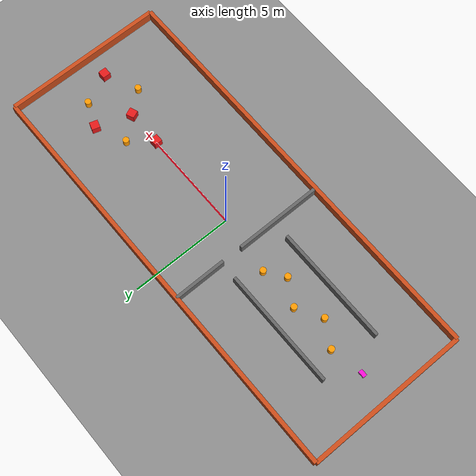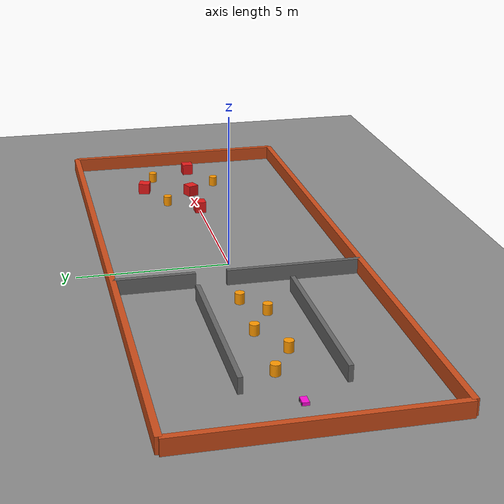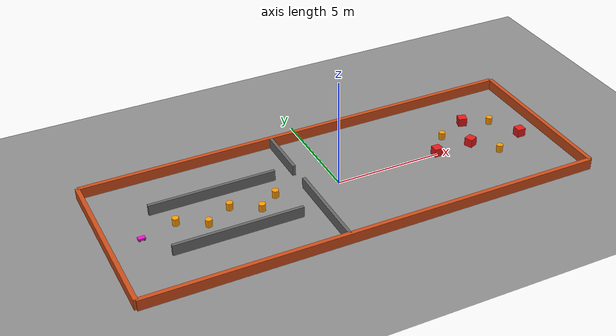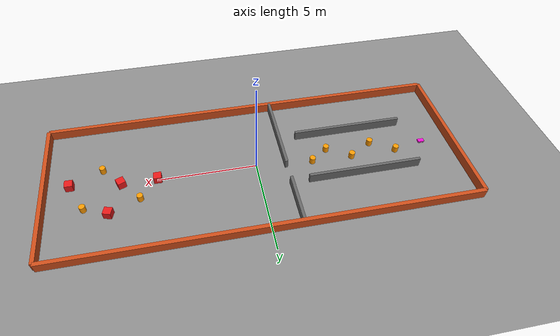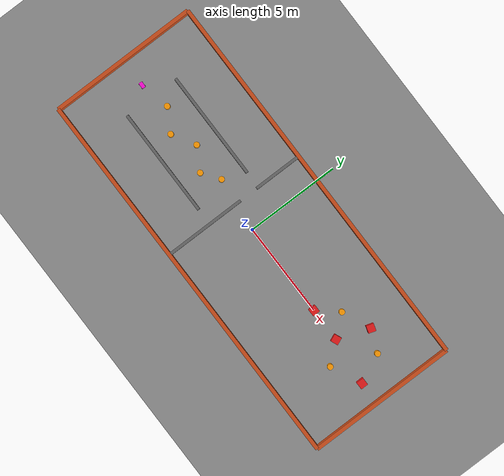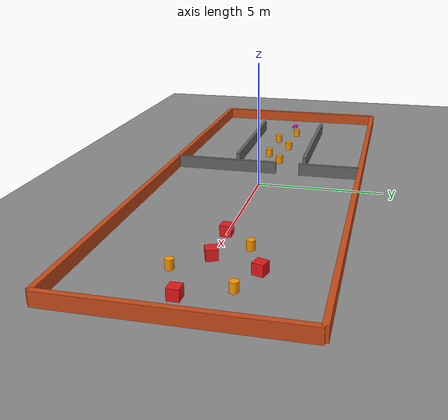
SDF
<sdf version="1.9">
 <world name="limo_obstacle_gauntlet">
  <physics name="1ms" type="ode">
   <max_step_size>0.001</max_step_size>
   <real_time_factor>1.0</real_time_factor>
  </physics>
  <plugin filename="gz-sim-physics-system" name="gz::sim::systems::Physics"/>
  <plugin filename="gz-sim-user-commands-system" name="gz::sim::systems::UserCommands"/>
  <plugin filename="gz-sim-scene-broadcaster-system" name="gz::sim::systems::SceneBroadcaster"/>
  <plugin filename="gz-sim-sensors-system" name="gz::sim::systems::Sensors">
   <render_engine>ogre2</render_engine>
  </plugin>
  <plugin filename="gz-sim-imu-system" name="gz::sim::systems::Imu"/>
  <plugin filename="gz-sim-contact-system" name="gz::sim::systems::Contact"/>
  <light type="directional" name="sun">
   <pose>0 0 10 0 0 0</pose>
   <diffuse>0.9 0.9 0.9 1</diffuse>
   <specular>0.3 0.3 0.3 1</specular>
   <direction>-0.5 0.1 -0.9</direction>
  </light>
  <model name="ground_plane">
   <static>true</static>
   <link name="link">
    <collision name="collision">
     <geometry><plane><normal>0 0 1</normal><size>100 100</size></plane></geometry>
     <surface><friction><ode><mu>0.8</mu><mu2>0.8</mu2></ode></friction></surface>
    </collision>
    <visual name="visual">
     <geometry><plane><normal>0 0 1</normal><size>100 100</size></plane></geometry>
     <material><ambient>0.45 0.45 0.45 1</ambient><diffuse>0.55 0.55 0.55 1</diffuse></material>
    </visual>
   </link>
  </model>
  <model name="wall_north">
   <static>true</static>
   <pose>0 4.0 0.25 0 0 0.0</pose>
   <link name="link">
    <collision name="collision"><geometry><box><size>21.0 0.2 0.5</size></box></geometry></collision>
    <visual name="visual">
     <geometry><box><size>21.0 0.2 0.5</size></box></geometry>
     <material><ambient>0.8 0.3 0.1 1</ambient><diffuse>0.8 0.3 0.1 1</diffuse></material>
    </visual>
   </link>
  </model>
  <model name="wall_south">
   <static>true</static>
   <pose>0 -4.0 0.25 0 0 0.0</pose>
   <link name="link">
    <collision name="collision"><geometry><box><size>21.0 0.2 0.5</size></box></geometry></collision>
    <visual name="visual">
     <geometry><box><size>21.0 0.2 0.5</size></box></geometry>
     <material><ambient>0.8 0.3 0.1 1</ambient><diffuse>0.8 0.3 0.1 1</diffuse></material>
    </visual>
   </link>
  </model>
  <model name="wall_east">
   <static>true</static>
   <pose>10.5 0 0.25 0 0 0.0</pose>
   <link name="link">
    <collision name="collision"><geometry><box><size>0.2 8.0 0.5</size></box></geometry></collision>
    <visual name="visual">
     <geometry><box><size>0.2 8.0 0.5</size></box></geometry>
     <material><ambient>0.8 0.3 0.1 1</ambient><diffuse>0.8 0.3 0.1 1</diffuse></material>
    </visual>
   </link>
  </model>
  <model name="wall_west">
   <static>true</static>
   <pose>-10.5 0 0.25 0 0 0.0</pose>
   <link name="link">
    <collision name="collision"><geometry><box><size>0.2 8.0 0.5</size></box></geometry></collision>
    <visual name="visual">
     <geometry><box><size>0.2 8.0 0.5</size></box></geometry>
     <material><ambient>0.8 0.3 0.1 1</ambient><diffuse>0.8 0.3 0.1 1</diffuse></material>
    </visual>
   </link>
  </model>
  <model name="corridor_north">
   <static>true</static>
   <pose>-5.3 1.5 0.25 0 0 0.0</pose>
   <link name="link">
    <collision name="collision"><geometry><box><size>5.8 0.15 0.5</size></box></geometry></collision>
    <visual name="visual">
     <geometry><box><size>5.8 0.15 0.5</size></box></geometry>
     <material><ambient>0.4 0.4 0.4 1</ambient><diffuse>0.4 0.4 0.4 1</diffuse></material>
    </visual>
   </link>
  </model>
  <model name="corridor_south">
   <static>true</static>
   <pose>-5.3 -1.5 0.25 0 0 0.0</pose>
   <link name="link">
    <collision name="collision"><geometry><box><size>5.8 0.15 0.5</size></box></geometry></collision>
    <visual name="visual">
     <geometry><box><size>5.8 0.15 0.5</size></box></geometry>
     <material><ambient>0.4 0.4 0.4 1</ambient><diffuse>0.4 0.4 0.4 1</diffuse></material>
    </visual>
   </link>
  </model>
  <model name="slalom_cone_0">
   <static>true</static>
   <pose>-7.4 0.35 0.175 0 0 0</pose>
   <link name="link">
    <collision name="collision">
     <geometry><cylinder><radius>0.15</radius><length>0.35</length></cylinder></geometry>
    </collision>
    <visual name="visual">
     <geometry><cylinder><radius>0.15</radius><length>0.35</length></cylinder></geometry>
     <material><ambient>1.0 0.5 0.0 1</ambient><diffuse>1.0 0.6 0.0 1</diffuse></material>
    </visual>
   </link>
  </model>
  <model name="slalom_cone_1">
   <static>true</static>
   <pose>-6.2 -0.35 0.175 0 0 0</pose>
   <link name="link">
    <collision name="collision">
     <geometry><cylinder><radius>0.15</radius><length>0.35</length></cylinder></geometry>
    </collision>
    <visual name="visual">
     <geometry><cylinder><radius>0.15</radius><length>0.35</length></cylinder></geometry>
     <material><ambient>1.0 0.5 0.0 1</ambient><diffuse>1.0 0.6 0.0 1</diffuse></material>
    </visual>
   </link>
  </model>
  <model name="slalom_cone_2">
   <static>true</static>
   <pose>-5.0 0.35 0.175 0 0 0</pose>
   <link name="link">
    <collision name="collision">
     <geometry><cylinder><radius>0.15</radius><length>0.35</length></cylinder></geometry>
    </collision>
    <visual name="visual">
     <geometry><cylinder><radius>0.15</radius><length>0.35</length></cylinder></geometry>
     <material><ambient>1.0 0.5 0.0 1</ambient><diffuse>1.0 0.6 0.0 1</diffuse></material>
    </visual>
   </link>
  </model>
  <model name="slalom_cone_3">
   <static>true</static>
   <pose>-3.8 -0.35 0.175 0 0 0</pose>
   <link name="link">
    <collision name="collision">
     <geometry><cylinder><radius>0.15</radius><length>0.35</length></cylinder></geometry>
    </collision>
    <visual name="visual">
     <geometry><cylinder><radius>0.15</radius><length>0.35</length></cylinder></geometry>
     <material><ambient>1.0 0.5 0.0 1</ambient><diffuse>1.0 0.6 0.0 1</diffuse></material>
    </visual>
   </link>
  </model>
  <model name="slalom_cone_4">
   <static>true</static>
   <pose>-2.9 0.3 0.175 0 0 0</pose>
   <link name="link">
    <collision name="collision">
     <geometry><cylinder><radius>0.15</radius><length>0.35</length></cylinder></geometry>
    </collision>
    <visual name="visual">
     <geometry><cylinder><radius>0.15</radius><length>0.35</length></cylinder></geometry>
     <material><ambient>1.0 0.5 0.0 1</ambient><diffuse>1.0 0.6 0.0 1</diffuse></material>
    </visual>
   </link>
  </model>
  <model name="gate_north">
   <static>true</static>
   <pose>-1.5 2.7 0.25 0 0 0.0</pose>
   <link name="link">
    <collision name="collision"><geometry><box><size>0.15 2.6 0.5</size></box></geometry></collision>
    <visual name="visual">
     <geometry><box><size>0.15 2.6 0.5</size></box></geometry>
     <material><ambient>0.4 0.4 0.4 1</ambient><diffuse>0.4 0.4 0.4 1</diffuse></material>
    </visual>
   </link>
  </model>
  <model name="gate_south">
   <static>true</static>
   <pose>-1.5 -1.8 0.25 0 0 0.0</pose>
   <link name="link">
    <collision name="collision"><geometry><box><size>0.15 4.4 0.5</size></box></geometry></collision>
    <visual name="visual">
     <geometry><box><size>0.15 4.4 0.5</size></box></geometry>
     <material><ambient>0.4 0.4 0.4 1</ambient><diffuse>0.4 0.4 0.4 1</diffuse></material>
    </visual>
   </link>
  </model>
  <model name="clutter_box_a">
   <static>true</static>
   <pose>5.0 0.0 0.2 0 0 0.0</pose>
   <link name="link">
    <collision name="collision"><geometry><box><size>0.4 0.4 0.4</size></box></geometry></collision>
    <visual name="visual">
     <geometry><box><size>0.4 0.4 0.4</size></box></geometry>
     <material><ambient>0.9 0.1 0.1 1</ambient><diffuse>0.9 0.1 0.1 1</diffuse></material>
    </visual>
   </link>
  </model>
  <model name="clutter_cone_b">
   <static>true</static>
   <pose>5.9 1.05 0.175 0 0 0</pose>
   <link name="link">
    <collision name="collision">
     <geometry><cylinder><radius>0.15</radius><length>0.35</length></cylinder></geometry>
    </collision>
    <visual name="visual">
     <geometry><cylinder><radius>0.15</radius><length>0.35</length></cylinder></geometry>
     <material><ambient>1.0 0.5 0.0 1</ambient><diffuse>1.0 0.6 0.0 1</diffuse></material>
    </visual>
   </link>
  </model>
  <model name="clutter_box_c">
   <static>true</static>
   <pose>6.8 0.0 0.2 0 0 0.4</pose>
   <link name="link">
    <collision name="collision"><geometry><box><size>0.4 0.4 0.4</size></box></geometry></collision>
    <visual name="visual">
     <geometry><box><size>0.4 0.4 0.4</size></box></geometry>
     <material><ambient>0.9 0.1 0.1 1</ambient><diffuse>0.9 0.1 0.1 1</diffuse></material>
    </visual>
   </link>
  </model>
  <model name="clutter_cone_d">
   <static>true</static>
   <pose>7.7 -1.05 0.175 0 0 0</pose>
   <link name="link">
    <collision name="collision">
     <geometry><cylinder><radius>0.15</radius><length>0.35</length></cylinder></geometry>
    </collision>
    <visual name="visual">
     <geometry><cylinder><radius>0.15</radius><length>0.35</length></cylinder></geometry>
     <material><ambient>1.0 0.5 0.0 1</ambient><diffuse>1.0 0.6 0.0 1</diffuse></material>
    </visual>
   </link>
  </model>
  <model name="clutter_box_e">
   <static>true</static>
   <pose>7.4 1.7 0.2 0 0 -0.3</pose>
   <link name="link">
    <collision name="collision"><geometry><box><size>0.4 0.4 0.4</size></box></geometry></collision>
    <visual name="visual">
     <geometry><box><size>0.4 0.4 0.4</size></box></geometry>
     <material><ambient>0.9 0.1 0.1 1</ambient><diffuse>0.9 0.1 0.1 1</diffuse></material>
    </visual>
   </link>
  </model>
  <model name="clutter_cone_f">
   <static>true</static>
   <pose>8.6 1.2 0.175 0 0 0</pose>
   <link name="link">
    <collision name="collision">
     <geometry><cylinder><radius>0.15</radius><length>0.35</length></cylinder></geometry>
    </collision>
    <visual name="visual">
     <geometry><cylinder><radius>0.15</radius><length>0.35</length></cylinder></geometry>
     <material><ambient>1.0 0.5 0.0 1</ambient><diffuse>1.0 0.6 0.0 1</diffuse></material>
    </visual>
   </link>
  </model>
  <model name="clutter_box_g">
   <static>true</static>
   <pose>9.3 -0.3 0.2 0 0 0.0</pose>
   <link name="link">
    <collision name="collision"><geometry><box><size>0.4 0.4 0.4</size></box></geometry></collision>
    <visual name="visual">
     <geometry><box><size>0.4 0.4 0.4</size></box></geometry>
     <material><ambient>0.9 0.1 0.1 1</ambient><diffuse>0.9 0.1 0.1 1</diffuse></material>
    </visual>
   </link>
  </model>
  <include>
   <uri>model://limo_pro</uri>
   <name>limo</name>
   <pose>-9 0 0.075 0 0 0</pose>
   <plugin filename="gz-sim-pose-publisher-system" name="gz::sim::systems::PosePublisher">
    <publish_model_pose>true</publish_model_pose>
    <publish_link_pose>false</publish_link_pose>
    <publish_collision_pose>false</publish_collision_pose>
    <publish_visual_pose>false</publish_visual_pose>
    <publish_sensor_pose>false</publish_sensor_pose>
    <use_pose_vector_msg>false</use_pose_vector_msg>
    <update_frequency>20</update_frequency>
   </plugin>
  </include>
 </world>
</sdf>

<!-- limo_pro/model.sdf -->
<sdf version="1.9">
  <model name="limo_pro">
    <static>false</static>

    <!-- ============ CHASSIS ============ -->
    <link name="base_link">
      <inertial>
        <mass>4.5</mass>
        <inertia>
          <ixx>0.045</ixx><iyy>0.08</iyy><izz>0.09</izz>
          <ixy>0</ixy><ixz>0</ixz><iyz>0</iyz>
        </inertia>
      </inertial>
      <visual name="chassis_visual">
        <geometry>
          <box><size>0.32 0.20 0.10</size></box>
        </geometry>
        <material>
          <ambient>1.0 0.0 0.85 1</ambient>
          <diffuse>1.0 0.05 0.85 1</diffuse>
          <emissive>0.35 0.0 0.3 1</emissive>
        </material>
      </visual>
      <collision name="chassis_collision">
        <geometry>
          <box><size>0.32 0.20 0.10</size></box>
        </geometry>
      </collision>

      <!-- ============ CAMERA SENSOR ============ -->
      <sensor name="camera" type="camera">
        <pose>0.16 0 0.12 0 0 0</pose>
        <always_on>true</always_on>
        <update_rate>30</update_rate>
        <topic>limo/camera</topic>
        <camera>
          <horizontal_fov>1.2</horizontal_fov>
          <image>
            <width>640</width>
            <height>480</height>
            <format>R8G8B8</format>
          </image>
          <clip><near>0.05</near><far>50</far></clip>
        </camera>
      </sensor>

      <!-- ============ LIDAR SENSOR ============ -->
      <sensor name="lidar" type="gpu_lidar">
        <pose>0.0 0 0.15 0 0 0</pose>
        <always_on>true</always_on>
        <update_rate>10</update_rate>
        <topic>limo/lidar</topic>
        <lidar>
          <scan>
            <horizontal>
              <samples>360</samples>
              <resolution>1</resolution>
              <min_angle>0</min_angle>
              <max_angle>6.28318</max_angle>
            </horizontal>
          </scan>
          <range>
            <min>0.1</min>
            <max>12.0</max>
            <resolution>0.01</resolution>
          </range>
        </lidar>
      </sensor>

      <!-- ============ IMU SENSOR ============ -->
      <sensor name="imu" type="imu">
        <pose>0 0 0.05 0 0 0</pose>
        <always_on>true</always_on>
        <update_rate>100</update_rate>
        <topic>limo/imu</topic>
        <imu>
          <angular_velocity>
            <x><noise type="gaussian"><mean>0</mean><stddev>0.001</stddev></noise></x>
            <y><noise type="gaussian"><mean>0</mean><stddev>0.001</stddev></noise></y>
            <z><noise type="gaussian"><mean>0</mean><stddev>0.001</stddev></noise></z>
          </angular_velocity>
          <linear_acceleration>
            <x><noise type="gaussian"><mean>0</mean><stddev>0.02</stddev></noise></x>
            <y><noise type="gaussian"><mean>0</mean><stddev>0.02</stddev></noise></y>
            <z><noise type="gaussian"><mean>0</mean><stddev>0.02</stddev></noise></z>
          </linear_acceleration>
        </imu>
      </sensor>
    </link>

    <!-- ============ REAR LEFT WHEEL ============ -->
    <link name="rear_left_wheel">
      <pose>-0.1 0.096 -0.03 -1.5707 0 0</pose>
      <inertial>
        <mass>0.3</mass>
        <inertia>
          <ixx>0.0002</ixx><iyy>0.0002</iyy><izz>0.0003</izz>
          <ixy>0</ixy><ixz>0</ixz><iyz>0</iyz>
        </inertia>
      </inertial>
      <visual name="visual">
        <geometry><cylinder><radius>0.045</radius><length>0.03</length></cylinder></geometry>
        <material><ambient>0.1 0.1 0.1 1</ambient><diffuse>0.15 0.15 0.15 1</diffuse></material>
      </visual>
      <collision name="collision">
        <geometry><cylinder><radius>0.045</radius><length>0.03</length></cylinder></geometry>
        <surface>
          <friction><ode><mu>1.0</mu><mu2>1.0</mu2></ode></friction>
        </surface>
      </collision>
    </link>
    <joint name="rear_left_wheel_joint" type="revolute">
      <parent>base_link</parent><child>rear_left_wheel</child>
      <axis><xyz>0 0 1</xyz></axis>
    </joint>

    <!-- ============ REAR RIGHT WHEEL ============ -->
    <link name="rear_right_wheel">
      <pose>-0.1 -0.096 -0.03 -1.5707 0 0</pose>
      <inertial>
        <mass>0.3</mass>
        <inertia>
          <ixx>0.0002</ixx><iyy>0.0002</iyy><izz>0.0003</izz>
          <ixy>0</ixy><ixz>0</ixz><iyz>0</iyz>
        </inertia>
      </inertial>
      <visual name="visual">
        <geometry><cylinder><radius>0.045</radius><length>0.03</length></cylinder></geometry>
        <material><ambient>0.1 0.1 0.1 1</ambient><diffuse>0.15 0.15 0.15 1</diffuse></material>
      </visual>
      <collision name="collision">
        <geometry><cylinder><radius>0.045</radius><length>0.03</length></cylinder></geometry>
        <surface>
          <friction><ode><mu>1.0</mu><mu2>1.0</mu2></ode></friction>
        </surface>
      </collision>
    </link>
    <joint name="rear_right_wheel_joint" type="revolute">
      <parent>base_link</parent><child>rear_right_wheel</child>
      <axis><xyz>0 0 1</xyz></axis>
    </joint>

    <!-- ============ FRONT LEFT STEERING + WHEEL ============ -->
    <link name="front_left_steering">
      <pose>0.1 0.096 -0.03 0 0 0</pose>
      <inertial><mass>0.05</mass>
        <inertia><ixx>0.00001</ixx><iyy>0.00001</iyy><izz>0.00001</izz>
          <ixy>0</ixy><ixz>0</ixz><iyz>0</iyz></inertia>
      </inertial>
    </link>
    <joint name="front_left_steering_joint" type="revolute">
      <parent>base_link</parent><child>front_left_steering</child>
      <axis><xyz>0 0 1</xyz>
        <limit><lower>-0.48</lower><upper>0.48</upper><effort>1e6</effort></limit>
      </axis>
    </joint>

    <link name="front_left_wheel">
      <pose>0.1 0.096 -0.03 -1.5707 0 0</pose>
      <inertial>
        <mass>0.3</mass>
        <inertia>
          <ixx>0.0002</ixx><iyy>0.0002</iyy><izz>0.0003</izz>
          <ixy>0</ixy><ixz>0</ixz><iyz>0</iyz>
        </inertia>
      </inertial>
      <visual name="visual">
        <geometry><cylinder><radius>0.045</radius><length>0.03</length></cylinder></geometry>
        <material><ambient>0.1 0.1 0.1 1</ambient><diffuse>0.15 0.15 0.15 1</diffuse></material>
      </visual>
      <collision name="collision">
        <geometry><cylinder><radius>0.045</radius><length>0.03</length></cylinder></geometry>
        <surface>
          <friction><ode><mu>1.0</mu><mu2>1.0</mu2></ode></friction>
        </surface>
      </collision>
    </link>
    <joint name="front_left_wheel_joint" type="revolute">
      <parent>front_left_steering</parent><child>front_left_wheel</child>
      <axis><xyz>0 0 1</xyz></axis>
    </joint>

    <!-- ============ FRONT RIGHT STEERING + WHEEL ============ -->
    <link name="front_right_steering">
      <pose>0.1 -0.096 -0.03 0 0 0</pose>
      <inertial><mass>0.05</mass>
        <inertia><ixx>0.00001</ixx><iyy>0.00001</iyy><izz>0.00001</izz>
          <ixy>0</ixy><ixz>0</ixz><iyz>0</iyz></inertia>
      </inertial>
    </link>
    <joint name="front_right_steering_joint" type="revolute">
      <parent>base_link</parent><child>front_right_steering</child>
      <axis><xyz>0 0 1</xyz>
        <limit><lower>-0.48</lower><upper>0.48</upper><effort>1e6</effort></limit>
      </axis>
    </joint>

    <link name="front_right_wheel">
      <pose>0.1 -0.096 -0.03 -1.5707 0 0</pose>
      <inertial>
        <mass>0.3</mass>
        <inertia>
          <ixx>0.0002</ixx><iyy>0.0002</iyy><izz>0.0003</izz>
          <ixy>0</ixy><ixz>0</ixz><iyz>0</iyz>
        </inertia>
      </inertial>
      <visual name="visual">
        <geometry><cylinder><radius>0.045</radius><length>0.03</length></cylinder></geometry>
        <material><ambient>0.1 0.1 0.1 1</ambient><diffuse>0.15 0.15 0.15 1</diffuse></material>
      </visual>
      <collision name="collision">
        <geometry><cylinder><radius>0.045</radius><length>0.03</length></cylinder></geometry>
        <surface>
          <friction><ode><mu>1.0</mu><mu2>1.0</mu2></ode></friction>
        </surface>
      </collision>
    </link>
    <joint name="front_right_wheel_joint" type="revolute">
      <parent>front_right_steering</parent><child>front_right_wheel</child>
      <axis><xyz>0 0 1</xyz></axis>
    </joint>

    <!-- ============ ACKERMANN STEERING PLUGIN ============ -->
    <plugin filename="gz-sim-ackermann-steering-system"
            name="gz::sim::systems::AckermannSteering">
      <left_joint>front_left_wheel_joint</left_joint>
      <right_joint>front_right_wheel_joint</right_joint>
      <left_steering_joint>front_left_steering_joint</left_steering_joint>
      <right_steering_joint>front_right_steering_joint</right_steering_joint>
      <kingpin_width>0.192</kingpin_width>
      <steering_limit>0.48</steering_limit>
      <steer_p_gain>8.0</steer_p_gain>
      <wheel_base>0.2</wheel_base>
      <wheel_separation>0.192</wheel_separation>
      <wheel_radius>0.045</wheel_radius>
      <topic>limo/cmd_vel</topic>
      <odom_topic>limo/odom</odom_topic>
      <tf_topic>limo/tf</tf_topic>
      <frame_id>odom</frame_id>
      <child_frame_id>base_link</child_frame_id>
      <odom_publish_frequency>20</odom_publish_frequency>
    </plugin>

    <!-- Joint state publisher for odometry -->
    <plugin filename="gz-sim-joint-state-publisher-system"
            name="gz::sim::systems::JointStatePublisher">
      <topic>limo/joint_states</topic>
    </plugin>

  </model>
</sdf>
